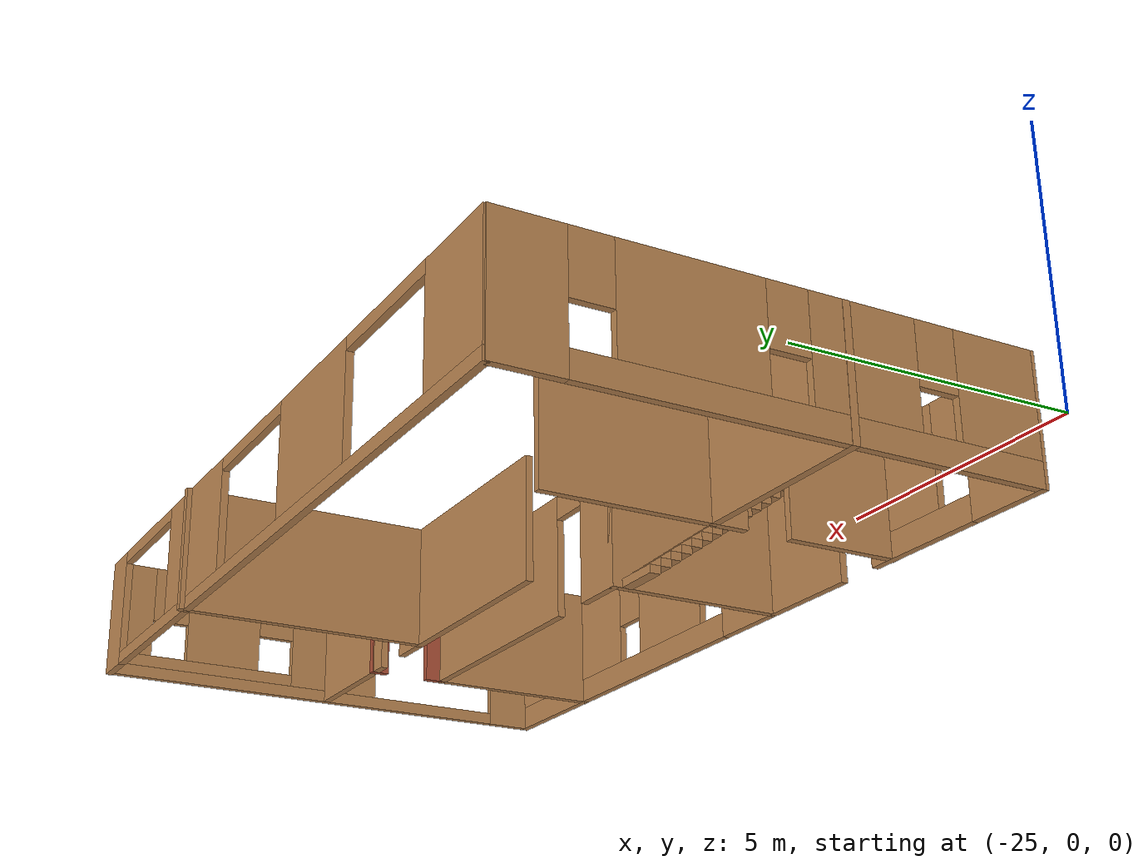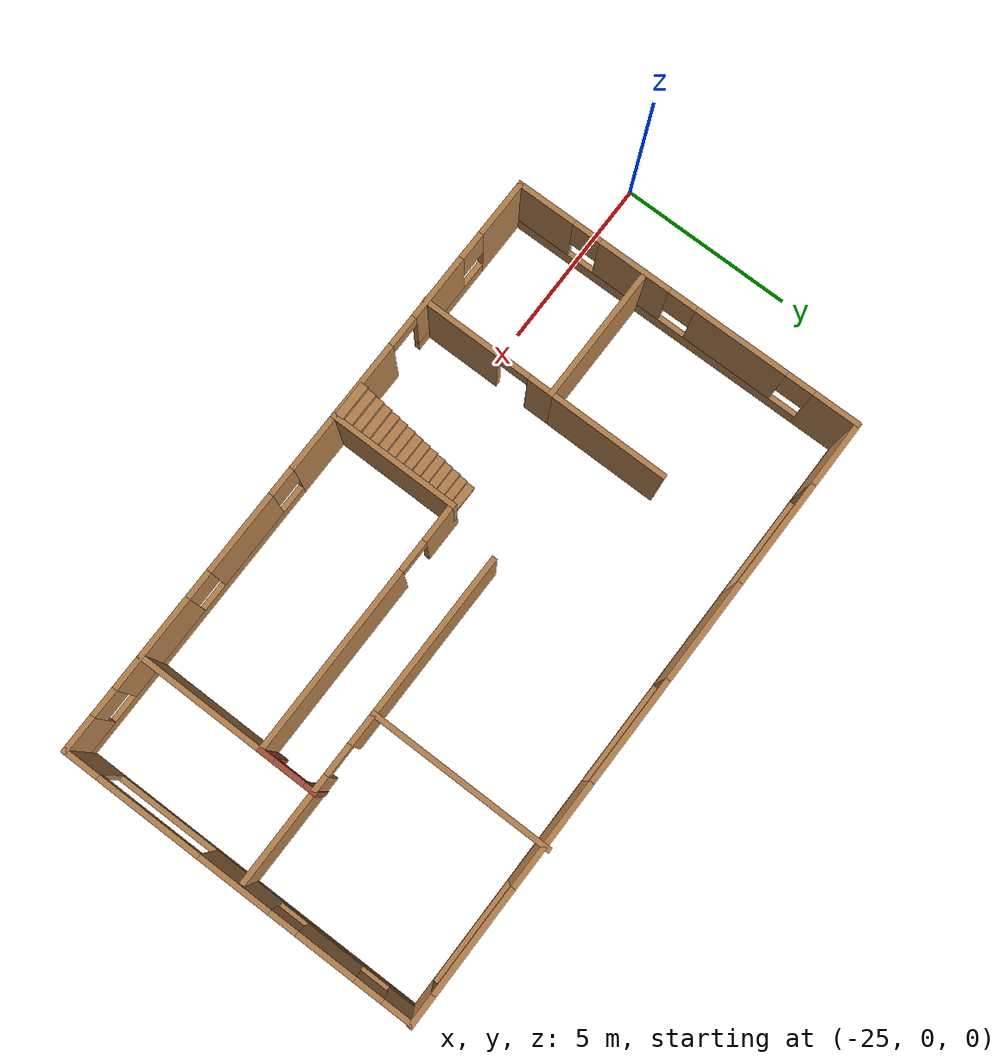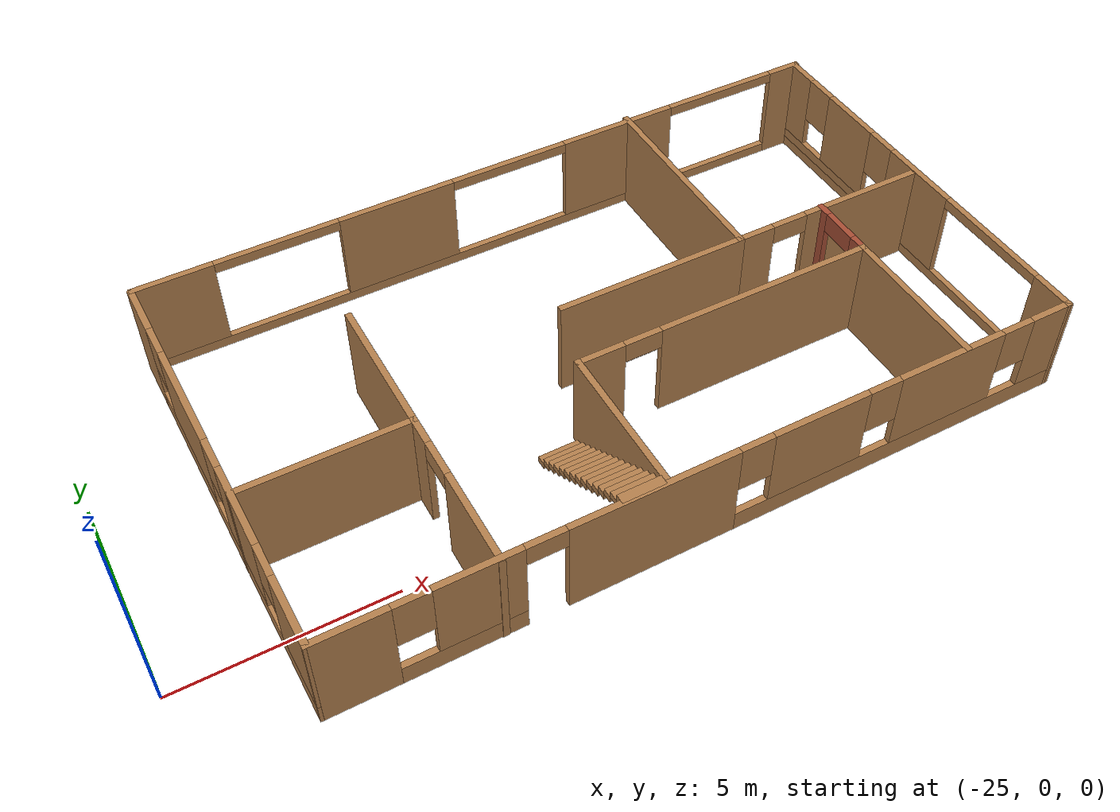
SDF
<?xml version='1.0'?>
<sdf version='1.6'>
  <model name='myhouse'>
    <pose frame=''>-13.7005 3.27894 0 0 -0 0</pose>
    <link name='Stairs_1'>
      <visual name='Stairs_1_Visual_0'>
        <pose frame=''>-1.85273 -1.76804 0.083333 0 -0 0</pose>
        <geometry>
          <box>
            <size>1 0.233333 0.166667</size>
          </box>
        </geometry>
        <material>
          <script>
            <uri>file://media/materials/scripts/gazebo.material</uri>
            <name>Gazebo/Wood</name>
          </script>
          <ambient>1 1 1 1</ambient>
        </material>
        <meta>
          <layer>0</layer>
        </meta>
      </visual>
      <collision name='Stairs_1_Collision_0'>
        <geometry>
          <box>
            <size>1 0.233333 0.166667</size>
          </box>
        </geometry>
        <pose frame=''>-1.85273 -1.76804 0.083333 0 -0 0</pose>
      </collision>
      <visual name='Stairs_1_Visual_1'>
        <pose frame=''>-1.85273 -2.00138 0.25 0 -0 0</pose>
        <geometry>
          <box>
            <size>1 0.233333 0.166667</size>
          </box>
        </geometry>
        <material>
          <script>
            <uri>file://media/materials/scripts/gazebo.material</uri>
            <name>Gazebo/Wood</name>
          </script>
          <ambient>1 1 1 1</ambient>
        </material>
        <meta>
          <layer>0</layer>
        </meta>
      </visual>
      <collision name='Stairs_1_Collision_1'>
        <geometry>
          <box>
            <size>1 0.233333 0.166667</size>
          </box>
        </geometry>
        <pose frame=''>-1.85273 -2.00138 0.25 0 -0 0</pose>
      </collision>
      <visual name='Stairs_1_Visual_2'>
        <pose frame=''>-1.85273 -2.23471 0.416667 0 -0 0</pose>
        <geometry>
          <box>
            <size>1 0.233333 0.166667</size>
          </box>
        </geometry>
        <material>
          <script>
            <uri>file://media/materials/scripts/gazebo.material</uri>
            <name>Gazebo/Wood</name>
          </script>
          <ambient>1 1 1 1</ambient>
        </material>
        <meta>
          <layer>0</layer>
        </meta>
      </visual>
      <collision name='Stairs_1_Collision_2'>
        <geometry>
          <box>
            <size>1 0.233333 0.166667</size>
          </box>
        </geometry>
        <pose frame=''>-1.85273 -2.23471 0.416667 0 -0 0</pose>
      </collision>
      <visual name='Stairs_1_Visual_3'>
        <pose frame=''>-1.85273 -2.46804 0.583333 0 -0 0</pose>
        <geometry>
          <box>
            <size>1 0.233333 0.166667</size>
          </box>
        </geometry>
        <material>
          <script>
            <uri>file://media/materials/scripts/gazebo.material</uri>
            <name>Gazebo/Wood</name>
          </script>
          <ambient>1 1 1 1</ambient>
        </material>
        <meta>
          <layer>0</layer>
        </meta>
      </visual>
      <collision name='Stairs_1_Collision_3'>
        <geometry>
          <box>
            <size>1 0.233333 0.166667</size>
          </box>
        </geometry>
        <pose frame=''>-1.85273 -2.46804 0.583333 0 -0 0</pose>
      </collision>
      <visual name='Stairs_1_Visual_4'>
        <pose frame=''>-1.85273 -2.70138 0.75 0 -0 0</pose>
        <geometry>
          <box>
            <size>1 0.233333 0.166667</size>
          </box>
        </geometry>
        <material>
          <script>
            <uri>file://media/materials/scripts/gazebo.material</uri>
            <name>Gazebo/Wood</name>
          </script>
          <ambient>1 1 1 1</ambient>
        </material>
        <meta>
          <layer>0</layer>
        </meta>
      </visual>
      <collision name='Stairs_1_Collision_4'>
        <geometry>
          <box>
            <size>1 0.233333 0.166667</size>
          </box>
        </geometry>
        <pose frame=''>-1.85273 -2.70138 0.75 0 -0 0</pose>
      </collision>
      <visual name='Stairs_1_Visual_5'>
        <pose frame=''>-1.85273 -2.93471 0.916667 0 -0 0</pose>
        <geometry>
          <box>
            <size>1 0.233333 0.166667</size>
          </box>
        </geometry>
        <material>
          <script>
            <uri>file://media/materials/scripts/gazebo.material</uri>
            <name>Gazebo/Wood</name>
          </script>
          <ambient>1 1 1 1</ambient>
        </material>
        <meta>
          <layer>0</layer>
        </meta>
      </visual>
      <collision name='Stairs_1_Collision_5'>
        <geometry>
          <box>
            <size>1 0.233333 0.166667</size>
          </box>
        </geometry>
        <pose frame=''>-1.85273 -2.93471 0.916667 0 -0 0</pose>
      </collision>
      <visual name='Stairs_1_Visual_6'>
        <pose frame=''>-1.85273 -3.16804 1.08333 0 -0 0</pose>
        <geometry>
          <box>
            <size>1 0.233333 0.166667</size>
          </box>
        </geometry>
        <material>
          <script>
            <uri>file://media/materials/scripts/gazebo.material</uri>
            <name>Gazebo/Wood</name>
          </script>
          <ambient>1 1 1 1</ambient>
        </material>
        <meta>
          <layer>0</layer>
        </meta>
      </visual>
      <collision name='Stairs_1_Collision_6'>
        <geometry>
          <box>
            <size>1 0.233333 0.166667</size>
          </box>
        </geometry>
        <pose frame=''>-1.85273 -3.16804 1.08333 0 -0 0</pose>
      </collision>
      <visual name='Stairs_1_Visual_7'>
        <pose frame=''>-1.85273 -3.40138 1.25 0 -0 0</pose>
        <geometry>
          <box>
            <size>1 0.233333 0.166667</size>
          </box>
        </geometry>
        <material>
          <script>
            <uri>file://media/materials/scripts/gazebo.material</uri>
            <name>Gazebo/Wood</name>
          </script>
          <ambient>1 1 1 1</ambient>
        </material>
        <meta>
          <layer>0</layer>
        </meta>
      </visual>
      <collision name='Stairs_1_Collision_7'>
        <geometry>
          <box>
            <size>1 0.233333 0.166667</size>
          </box>
        </geometry>
        <pose frame=''>-1.85273 -3.40138 1.25 0 -0 0</pose>
      </collision>
      <visual name='Stairs_1_Visual_8'>
        <pose frame=''>-1.85273 -3.63471 1.41667 0 -0 0</pose>
        <geometry>
          <box>
            <size>1 0.233333 0.166667</size>
          </box>
        </geometry>
        <material>
          <script>
            <uri>file://media/materials/scripts/gazebo.material</uri>
            <name>Gazebo/Wood</name>
          </script>
          <ambient>1 1 1 1</ambient>
        </material>
        <meta>
          <layer>0</layer>
        </meta>
      </visual>
      <collision name='Stairs_1_Collision_8'>
        <geometry>
          <box>
            <size>1 0.233333 0.166667</size>
          </box>
        </geometry>
        <pose frame=''>-1.85273 -3.63471 1.41667 0 -0 0</pose>
      </collision>
      <visual name='Stairs_1_Visual_9'>
        <pose frame=''>-1.85273 -3.86804 1.58333 0 -0 0</pose>
        <geometry>
          <box>
            <size>1 0.233333 0.166667</size>
          </box>
        </geometry>
        <material>
          <script>
            <uri>file://media/materials/scripts/gazebo.material</uri>
            <name>Gazebo/Wood</name>
          </script>
          <ambient>1 1 1 1</ambient>
        </material>
        <meta>
          <layer>0</layer>
        </meta>
      </visual>
      <collision name='Stairs_1_Collision_9'>
        <geometry>
          <box>
            <size>1 0.233333 0.166667</size>
          </box>
        </geometry>
        <pose frame=''>-1.85273 -3.86804 1.58333 0 -0 0</pose>
      </collision>
      <visual name='Stairs_1_Visual_10'>
        <pose frame=''>-1.85273 -4.10138 1.75 0 -0 0</pose>
        <geometry>
          <box>
            <size>1 0.233333 0.166667</size>
          </box>
        </geometry>
        <material>
          <script>
            <uri>file://media/materials/scripts/gazebo.material</uri>
            <name>Gazebo/Wood</name>
          </script>
          <ambient>1 1 1 1</ambient>
        </material>
        <meta>
          <layer>0</layer>
        </meta>
      </visual>
      <collision name='Stairs_1_Collision_10'>
        <geometry>
          <box>
            <size>1 0.233333 0.166667</size>
          </box>
        </geometry>
        <pose frame=''>-1.85273 -4.10138 1.75 0 -0 0</pose>
      </collision>
      <visual name='Stairs_1_Visual_11'>
        <pose frame=''>-1.85273 -4.33471 1.91667 0 -0 0</pose>
        <geometry>
          <box>
            <size>1 0.233333 0.166667</size>
          </box>
        </geometry>
        <material>
          <script>
            <uri>file://media/materials/scripts/gazebo.material</uri>
            <name>Gazebo/Wood</name>
          </script>
          <ambient>1 1 1 1</ambient>
        </material>
        <meta>
          <layer>0</layer>
        </meta>
      </visual>
      <collision name='Stairs_1_Collision_11'>
        <geometry>
          <box>
            <size>1 0.233333 0.166667</size>
          </box>
        </geometry>
        <pose frame=''>-1.85273 -4.33471 1.91667 0 -0 0</pose>
      </collision>
      <visual name='Stairs_1_Visual_12'>
        <pose frame=''>-1.85273 -4.56804 2.08333 0 -0 0</pose>
        <geometry>
          <box>
            <size>1 0.233333 0.166667</size>
          </box>
        </geometry>
        <material>
          <script>
            <uri>file://media/materials/scripts/gazebo.material</uri>
            <name>Gazebo/Wood</name>
          </script>
          <ambient>1 1 1 1</ambient>
        </material>
        <meta>
          <layer>0</layer>
        </meta>
      </visual>
      <collision name='Stairs_1_Collision_12'>
        <geometry>
          <box>
            <size>1 0.233333 0.166667</size>
          </box>
        </geometry>
        <pose frame=''>-1.85273 -4.56804 2.08333 0 -0 0</pose>
      </collision>
      <visual name='Stairs_1_Visual_13'>
        <pose frame=''>-1.85273 -4.80138 2.25 0 -0 0</pose>
        <geometry>
          <box>
            <size>1 0.233333 0.166667</size>
          </box>
        </geometry>
        <material>
          <script>
            <uri>file://media/materials/scripts/gazebo.material</uri>
            <name>Gazebo/Wood</name>
          </script>
          <ambient>1 1 1 1</ambient>
        </material>
        <meta>
          <layer>0</layer>
        </meta>
      </visual>
      <collision name='Stairs_1_Collision_13'>
        <geometry>
          <box>
            <size>1 0.233333 0.166667</size>
          </box>
        </geometry>
        <pose frame=''>-1.85273 -4.80138 2.25 0 -0 0</pose>
      </collision>
      <visual name='Stairs_1_Visual_14'>
        <pose frame=''>-1.85273 -5.03471 2.41667 0 -0 0</pose>
        <geometry>
          <box>
            <size>1 0.233333 0.166667</size>
          </box>
        </geometry>
        <material>
          <script>
            <uri>file://media/materials/scripts/gazebo.material</uri>
            <name>Gazebo/Wood</name>
          </script>
          <ambient>1 1 1 1</ambient>
        </material>
        <meta>
          <layer>0</layer>
        </meta>
      </visual>
      <collision name='Stairs_1_Collision_14'>
        <geometry>
          <box>
            <size>1 0.233333 0.166667</size>
          </box>
        </geometry>
        <pose frame=''>-1.85273 -5.03471 2.41667 0 -0 0</pose>
      </collision>
    </link>
    <link name='Wall_1'>
      <pose frame=''>-8.8 -0.057051 0 0 0 -1.56387</pose>
      <visual name='Wall_1_Visual_0'>
        <pose frame=''>-4.485 0 1.25 0 -0 0</pose>
        <geometry>
          <box>
            <size>1.33925 0.15 2.5</size>
          </box>
        </geometry>
        <material>
          <script>
            <uri>file://media/materials/scripts/gazebo.material</uri>
            <name>Gazebo/Wood</name>
          </script>
          <ambient>1 1 1 1</ambient>
        </material>
        <meta>
          <layer>0</layer>
        </meta>
      </visual>
      <collision name='Wall_1_Collision_0'>
        <geometry>
          <box>
            <size>1.33925 0.15 2.5</size>
          </box>
        </geometry>
        <pose frame=''>-4.485 0 1.25 0 -0 0</pose>
      </collision>
      <visual name='Wall_1_Visual_1'>
        <pose frame=''>0.669623 0 0.25 0 -0 0</pose>
        <geometry>
          <box>
            <size>8.97 0.15 0.5</size>
          </box>
        </geometry>
        <material>
          <script>
            <uri>file://media/materials/scripts/gazebo.material</uri>
            <name>Gazebo/Wood</name>
          </script>
          <ambient>1 1 1 1</ambient>
        </material>
        <meta>
          <layer>0</layer>
        </meta>
      </visual>
      <collision name='Wall_1_Collision_1'>
        <geometry>
          <box>
            <size>8.97 0.15 0.5</size>
          </box>
        </geometry>
        <pose frame=''>0.669623 0 0.25 0 -0 0</pose>
      </collision>
      <visual name='Wall_1_Visual_2'>
        <pose frame=''>-1.6569 0 1.5 0 -0 0</pose>
        <geometry>
          <box>
            <size>2.71694 0.15 2</size>
          </box>
        </geometry>
        <material>
          <script>
            <uri>file://media/materials/scripts/gazebo.material</uri>
            <name>Gazebo/Wood</name>
          </script>
          <ambient>1 1 1 1</ambient>
        </material>
        <meta>
          <layer>0</layer>
        </meta>
      </visual>
      <collision name='Wall_1_Collision_2'>
        <geometry>
          <box>
            <size>2.71694 0.15 2</size>
          </box>
        </geometry>
        <pose frame=''>-1.6569 0 1.5 0 -0 0</pose>
      </collision>
      <visual name='Wall_1_Visual_3'>
        <pose frame=''>1.55542 0 1.5 0 -0 0</pose>
        <geometry>
          <box>
            <size>2.1077 0.15 2</size>
          </box>
        </geometry>
        <material>
          <script>
            <uri>file://media/materials/scripts/gazebo.material</uri>
            <name>Gazebo/Wood</name>
          </script>
          <ambient>1 1 1 1</ambient>
        </material>
        <meta>
          <layer>0</layer>
        </meta>
      </visual>
      <collision name='Wall_1_Collision_3'>
        <geometry>
          <box>
            <size>2.1077 0.15 2</size>
          </box>
        </geometry>
        <pose frame=''>1.55542 0 1.5 0 -0 0</pose>
      </collision>
      <visual name='Wall_1_Visual_4'>
        <pose frame=''>4.28194 0 1.5 0 -0 0</pose>
        <geometry>
          <box>
            <size>1.74535 0.15 2</size>
          </box>
        </geometry>
        <material>
          <script>
            <uri>file://media/materials/scripts/gazebo.material</uri>
            <name>Gazebo/Wood</name>
          </script>
          <ambient>1 1 1 1</ambient>
        </material>
        <meta>
          <layer>0</layer>
        </meta>
      </visual>
      <collision name='Wall_1_Collision_4'>
        <geometry>
          <box>
            <size>1.74535 0.15 2</size>
          </box>
        </geometry>
        <pose frame=''>4.28194 0 1.5 0 -0 0</pose>
      </collision>
      <visual name='Wall_1_Visual_5'>
        <pose frame=''>-3.41537 0 1.9 0 -0 0</pose>
        <geometry>
          <box>
            <size>0.8 0.15 1.2</size>
          </box>
        </geometry>
        <material>
          <script>
            <uri>file://media/materials/scripts/gazebo.material</uri>
            <name>Gazebo/Wood</name>
          </script>
          <ambient>1 1 1 1</ambient>
        </material>
        <meta>
          <layer>0</layer>
        </meta>
      </visual>
      <collision name='Wall_1_Collision_5'>
        <geometry>
          <box>
            <size>0.8 0.15 1.2</size>
          </box>
        </geometry>
        <pose frame=''>-3.41537 0 1.9 0 -0 0</pose>
      </collision>
      <visual name='Wall_1_Visual_6'>
        <pose frame=''>0.10157 0 1.9 0 -0 0</pose>
        <geometry>
          <box>
            <size>0.8 0.15 1.2</size>
          </box>
        </geometry>
        <material>
          <script>
            <uri>file://media/materials/scripts/gazebo.material</uri>
            <name>Gazebo/Wood</name>
          </script>
          <ambient>1 1 1 1</ambient>
        </material>
        <meta>
          <layer>0</layer>
        </meta>
      </visual>
      <collision name='Wall_1_Collision_6'>
        <geometry>
          <box>
            <size>0.8 0.15 1.2</size>
          </box>
        </geometry>
        <pose frame=''>0.10157 0 1.9 0 -0 0</pose>
      </collision>
      <visual name='Wall_1_Visual_7'>
        <pose frame=''>3.00927 0 1.9 0 -0 0</pose>
        <geometry>
          <box>
            <size>0.8 0.15 1.2</size>
          </box>
        </geometry>
        <material>
          <script>
            <uri>file://media/materials/scripts/gazebo.material</uri>
            <name>Gazebo/Wood</name>
          </script>
          <ambient>1 1 1 1</ambient>
        </material>
        <meta>
          <layer>0</layer>
        </meta>
      </visual>
      <collision name='Wall_1_Collision_7'>
        <geometry>
          <box>
            <size>0.8 0.15 1.2</size>
          </box>
        </geometry>
        <pose frame=''>3.00927 0 1.9 0 -0 0</pose>
      </collision>
    </link>
    <link name='Wall_10'>
      <collision name='Wall_10_Collision'>
        <geometry>
          <box>
            <size>4.75 0.15 2.5</size>
          </box>
        </geometry>
        <pose frame=''>0 0 1.25 0 -0 0</pose>
      </collision>
      <visual name='Wall_10_Visual'>
        <pose frame=''>0 0 1.25 0 -0 0</pose>
        <geometry>
          <box>
            <size>4.75 0.15 2.5</size>
          </box>
        </geometry>
        <material>
          <script>
            <uri>file://media/materials/scripts/gazebo.material</uri>
            <name>Gazebo/Wood</name>
          </script>
          <ambient>1 1 1 1</ambient>
        </material>
        <meta>
          <layer>0</layer>
        </meta>
      </visual>
      <pose frame=''>1.47718 0.052269 0 0 -0 3.14159</pose>
    </link>
    <link name='Wall_12'>
      <pose frame=''>6.20218 0.052269 0 0 -0 0</pose>
      <visual name='Wall_12_Visual_0'>
        <pose frame=''>-2.01517 0 1.25 0 -0 0</pose>
        <geometry>
          <box>
            <size>0.969666 0.15 2.5</size>
          </box>
        </geometry>
        <material>
          <script>
            <uri>file://media/materials/scripts/gazebo.material</uri>
            <name>Gazebo/Wood</name>
          </script>
          <ambient>1 1 1 1</ambient>
        </material>
        <meta>
          <layer>0</layer>
        </meta>
      </visual>
      <collision name='Wall_12_Collision_0'>
        <geometry>
          <box>
            <size>0.969666 0.15 2.5</size>
          </box>
        </geometry>
        <pose frame=''>-2.01517 0 1.25 0 -0 0</pose>
      </collision>
      <visual name='Wall_12_Visual_1'>
        <pose frame=''>0.934833 0 1.25 0 -0 0</pose>
        <geometry>
          <box>
            <size>3.13033 0.15 2.5</size>
          </box>
        </geometry>
        <material>
          <script>
            <uri>file://media/materials/scripts/gazebo.material</uri>
            <name>Gazebo/Wood</name>
          </script>
          <ambient>1 1 1 1</ambient>
        </material>
        <meta>
          <layer>0</layer>
        </meta>
      </visual>
      <collision name='Wall_12_Collision_1'>
        <geometry>
          <box>
            <size>3.13033 0.15 2.5</size>
          </box>
        </geometry>
        <pose frame=''>0.934833 0 1.25 0 -0 0</pose>
      </collision>
      <visual name='Wall_12_Visual_2'>
        <pose frame=''>-1.08033 0 2.25 0 -0 0</pose>
        <geometry>
          <box>
            <size>0.9 0.15 0.5</size>
          </box>
        </geometry>
        <material>
          <script>
            <uri>file://media/materials/scripts/gazebo.material</uri>
            <name>Gazebo/Wood</name>
          </script>
          <ambient>1 1 1 1</ambient>
        </material>
        <meta>
          <layer>0</layer>
        </meta>
      </visual>
      <collision name='Wall_12_Collision_2'>
        <geometry>
          <box>
            <size>0.9 0.15 0.5</size>
          </box>
        </geometry>
        <pose frame=''>-1.08033 0 2.25 0 -0 0</pose>
      </collision>
    </link>
    <link name='Wall_14'>
      <pose frame=''>-4.9454 -3.22727 0 0 0 -1.5708</pose>
      <visual name='Wall_14_Visual_0'>
        <pose frame=''>-1.62739 0 1.25 0 -0 0</pose>
        <geometry>
          <box>
            <size>0.74522 0.15 2.5</size>
          </box>
        </geometry>
        <material>
          <script>
            <uri>file://media/materials/scripts/gazebo.material</uri>
            <name>Gazebo/Wood</name>
          </script>
          <ambient>1 1 1 1</ambient>
        </material>
        <meta>
          <layer>0</layer>
        </meta>
      </visual>
      <collision name='Wall_14_Collision_0'>
        <geometry>
          <box>
            <size>0.74522 0.15 2.5</size>
          </box>
        </geometry>
        <pose frame=''>-1.62739 0 1.25 0 -0 0</pose>
      </collision>
      <visual name='Wall_14_Visual_1'>
        <pose frame=''>0.82261 0 1.25 0 -0 0</pose>
        <geometry>
          <box>
            <size>2.35478 0.15 2.5</size>
          </box>
        </geometry>
        <material>
          <script>
            <uri>file://media/materials/scripts/gazebo.material</uri>
            <name>Gazebo/Wood</name>
          </script>
          <ambient>1 1 1 1</ambient>
        </material>
        <meta>
          <layer>0</layer>
        </meta>
      </visual>
      <collision name='Wall_14_Collision_1'>
        <geometry>
          <box>
            <size>2.35478 0.15 2.5</size>
          </box>
        </geometry>
        <pose frame=''>0.82261 0 1.25 0 -0 0</pose>
      </collision>
      <visual name='Wall_14_Visual_2'>
        <pose frame=''>-0.80478 0 2.25 0 -0 0</pose>
        <geometry>
          <box>
            <size>0.9 0.15 0.5</size>
          </box>
        </geometry>
        <material>
          <script>
            <uri>file://media/materials/scripts/gazebo.material</uri>
            <name>Gazebo/Wood</name>
          </script>
          <ambient>1 1 1 1</ambient>
        </material>
        <meta>
          <layer>0</layer>
        </meta>
      </visual>
      <collision name='Wall_14_Collision_2'>
        <geometry>
          <box>
            <size>0.9 0.15 0.5</size>
          </box>
        </geometry>
        <pose frame=''>-0.80478 0 2.25 0 -0 0</pose>
      </collision>
    </link>
    <link name='Wall_16'>
      <collision name='Wall_16_Collision'>
        <geometry>
          <box>
            <size>3.75 0.15 2.5</size>
          </box>
        </geometry>
        <pose frame=''>0 0 1.25 0 -0 0</pose>
      </collision>
      <visual name='Wall_16_Visual'>
        <pose frame=''>0 0 1.25 0 -0 0</pose>
        <geometry>
          <box>
            <size>3.75 0.15 2.5</size>
          </box>
        </geometry>
        <material>
          <script>
            <uri>file://media/materials/scripts/gazebo.material</uri>
            <name>Gazebo/Wood</name>
          </script>
          <ambient>1 1 1 1</ambient>
        </material>
        <meta>
          <layer>0</layer>
        </meta>
      </visual>
      <pose frame=''>-1.3008 -3.32605 0 0 -0 1.5708</pose>
    </link>
    <link name='Wall_17'>
      <pose frame=''>2.3742 -1.52605 0 0 -0 0</pose>
      <visual name='Wall_17_Visual_0'>
        <pose frame=''>-3.1581 0 1.25 0 -0 0</pose>
        <geometry>
          <box>
            <size>1.1838 0.15 2.5</size>
          </box>
        </geometry>
        <material>
          <script>
            <uri>file://media/materials/scripts/gazebo.material</uri>
            <name>Gazebo/Wood</name>
          </script>
          <ambient>1 1 1 1</ambient>
        </material>
        <meta>
          <layer>0</layer>
        </meta>
      </visual>
      <collision name='Wall_17_Collision_0'>
        <geometry>
          <box>
            <size>1.1838 0.15 2.5</size>
          </box>
        </geometry>
        <pose frame=''>-3.1581 0 1.25 0 -0 0</pose>
      </collision>
      <visual name='Wall_17_Visual_1'>
        <pose frame=''>1.0419 0 1.25 0 -0 0</pose>
        <geometry>
          <box>
            <size>5.4162 0.15 2.5</size>
          </box>
        </geometry>
        <material>
          <script>
            <uri>file://media/materials/scripts/gazebo.material</uri>
            <name>Gazebo/Wood</name>
          </script>
          <ambient>1 1 1 1</ambient>
        </material>
        <meta>
          <layer>0</layer>
        </meta>
      </visual>
      <collision name='Wall_17_Collision_1'>
        <geometry>
          <box>
            <size>5.4162 0.15 2.5</size>
          </box>
        </geometry>
        <pose frame=''>1.0419 0 1.25 0 -0 0</pose>
      </collision>
      <visual name='Wall_17_Visual_2'>
        <pose frame=''>-2.1162 0 2.25 0 -0 0</pose>
        <geometry>
          <box>
            <size>0.9 0.15 0.5</size>
          </box>
        </geometry>
        <material>
          <script>
            <uri>file://media/materials/scripts/gazebo.material</uri>
            <name>Gazebo/Wood</name>
          </script>
          <ambient>1 1 1 1</ambient>
        </material>
        <meta>
          <layer>0</layer>
        </meta>
      </visual>
      <collision name='Wall_17_Collision_2'>
        <geometry>
          <box>
            <size>0.9 0.15 0.5</size>
          </box>
        </geometry>
        <pose frame=''>-2.1162 0 2.25 0 -0 0</pose>
      </collision>
    </link>
    <link name='Wall_18'>
      <collision name='Wall_18_Collision'>
        <geometry>
          <box>
            <size>3.75 0.15 2.5</size>
          </box>
        </geometry>
        <pose frame=''>0 0 1.25 0 -0 0</pose>
      </collision>
      <visual name='Wall_18_Visual'>
        <pose frame=''>0 0 1.25 0 -0 0</pose>
        <geometry>
          <box>
            <size>3.75 0.15 2.5</size>
          </box>
        </geometry>
        <material>
          <script>
            <uri>file://media/materials/scripts/gazebo.material</uri>
            <name>Gazebo/Wood</name>
          </script>
          <ambient>1 1 1 1</ambient>
        </material>
        <meta>
          <layer>0</layer>
        </meta>
      </visual>
      <pose frame=''>6.0492 -3.32605 0 0 0 -1.5708</pose>
    </link>
    <link name='Wall_2'>
      <pose frame=''>0.035187 -5.13655 0 0 -0 0</pose>
      <visual name='Wall_2_Visual_0'>
        <pose frame=''>-8.02867 0 1.25 0 -0 0</pose>
        <geometry>
          <box>
            <size>1.69265 0.15 2.5</size>
          </box>
        </geometry>
        <material>
          <script>
            <uri>file://media/materials/scripts/gazebo.material</uri>
            <name>Gazebo/Wood</name>
          </script>
          <ambient>1 1 1 1</ambient>
        </material>
        <meta>
          <layer>0</layer>
        </meta>
      </visual>
      <collision name='Wall_2_Collision_0'>
        <geometry>
          <box>
            <size>1.69265 0.15 2.5</size>
          </box>
        </geometry>
        <pose frame=''>-8.02867 0 1.25 0 -0 0</pose>
      </collision>
      <visual name='Wall_2_Visual_1'>
        <pose frame=''>-1.63349 0 1.25 0 -0 0</pose>
        <geometry>
          <box>
            <size>3.89148 0.15 2.5</size>
          </box>
        </geometry>
        <material>
          <script>
            <uri>file://media/materials/scripts/gazebo.material</uri>
            <name>Gazebo/Wood</name>
          </script>
          <ambient>1 1 1 1</ambient>
        </material>
        <meta>
          <layer>0</layer>
        </meta>
      </visual>
      <collision name='Wall_2_Collision_1'>
        <geometry>
          <box>
            <size>3.89148 0.15 2.5</size>
          </box>
        </geometry>
        <pose frame=''>-1.63349 0 1.25 0 -0 0</pose>
      </collision>
      <visual name='Wall_2_Visual_2'>
        <pose frame=''>-5.83079 0 0.25 0 -0 0</pose>
        <geometry>
          <box>
            <size>2.70312 0.15 0.5</size>
          </box>
        </geometry>
        <material>
          <script>
            <uri>file://media/materials/scripts/gazebo.material</uri>
            <name>Gazebo/Wood</name>
          </script>
          <ambient>1 1 1 1</ambient>
        </material>
        <meta>
          <layer>0</layer>
        </meta>
      </visual>
      <collision name='Wall_2_Collision_2'>
        <geometry>
          <box>
            <size>2.70312 0.15 0.5</size>
          </box>
        </geometry>
        <pose frame=''>-5.83079 0 0.25 0 -0 0</pose>
      </collision>
      <visual name='Wall_2_Visual_3'>
        <pose frame=''>4.59363 0 0.25 0 -0 0</pose>
        <geometry>
          <box>
            <size>8.56274 0.15 0.5</size>
          </box>
        </geometry>
        <material>
          <script>
            <uri>file://media/materials/scripts/gazebo.material</uri>
            <name>Gazebo/Wood</name>
          </script>
          <ambient>1 1 1 1</ambient>
        </material>
        <meta>
          <layer>0</layer>
        </meta>
      </visual>
      <collision name='Wall_2_Collision_3'>
        <geometry>
          <box>
            <size>8.56274 0.15 0.5</size>
          </box>
        </geometry>
        <pose frame=''>4.59363 0 0.25 0 -0 0</pose>
      </collision>
      <visual name='Wall_2_Visual_4'>
        <pose frame=''>-5.43079 0 1.5 0 -0 0</pose>
        <geometry>
          <box>
            <size>1.90312 0.15 2</size>
          </box>
        </geometry>
        <material>
          <script>
            <uri>file://media/materials/scripts/gazebo.material</uri>
            <name>Gazebo/Wood</name>
          </script>
          <ambient>1 1 1 1</ambient>
        </material>
        <meta>
          <layer>0</layer>
        </meta>
      </visual>
      <collision name='Wall_2_Collision_4'>
        <geometry>
          <box>
            <size>1.90312 0.15 2</size>
          </box>
        </geometry>
        <pose frame=''>-5.43079 0 1.5 0 -0 0</pose>
      </collision>
      <visual name='Wall_2_Visual_5'>
        <pose frame=''>-5.43079 0 1.5 0 -0 0</pose>
        <geometry>
          <box>
            <size>1.90312 0.15 2</size>
          </box>
        </geometry>
        <material>
          <script>
            <uri>file://media/materials/scripts/gazebo.material</uri>
            <name>Gazebo/Wood</name>
          </script>
          <ambient>1 1 1 1</ambient>
        </material>
        <meta>
          <layer>0</layer>
        </meta>
      </visual>
      <collision name='Wall_2_Collision_5'>
        <geometry>
          <box>
            <size>1.90312 0.15 2</size>
          </box>
        </geometry>
        <pose frame=''>-5.43079 0 1.5 0 -0 0</pose>
      </collision>
      <visual name='Wall_2_Visual_6'>
        <pose frame=''>2.28765 0 1.5 0 -0 0</pose>
        <geometry>
          <box>
            <size>2.35079 0.15 2</size>
          </box>
        </geometry>
        <material>
          <script>
            <uri>file://media/materials/scripts/gazebo.material</uri>
            <name>Gazebo/Wood</name>
          </script>
          <ambient>1 1 1 1</ambient>
        </material>
        <meta>
          <layer>0</layer>
        </meta>
      </visual>
      <collision name='Wall_2_Collision_6'>
        <geometry>
          <box>
            <size>2.35079 0.15 2</size>
          </box>
        </geometry>
        <pose frame=''>2.28765 0 1.5 0 -0 0</pose>
      </collision>
      <visual name='Wall_2_Visual_7'>
        <pose frame=''>5.62199 0 1.5 0 -0 0</pose>
        <geometry>
          <box>
            <size>2.71788 0.15 2</size>
          </box>
        </geometry>
        <material>
          <script>
            <uri>file://media/materials/scripts/gazebo.material</uri>
            <name>Gazebo/Wood</name>
          </script>
          <ambient>1 1 1 1</ambient>
        </material>
        <meta>
          <layer>0</layer>
        </meta>
      </visual>
      <collision name='Wall_2_Collision_7'>
        <geometry>
          <box>
            <size>2.71788 0.15 2</size>
          </box>
        </geometry>
        <pose frame=''>5.62199 0 1.5 0 -0 0</pose>
      </collision>
      <visual name='Wall_2_Visual_8'>
        <pose frame=''>8.32796 0 1.5 0 -0 0</pose>
        <geometry>
          <box>
            <size>1.09407 0.15 2</size>
          </box>
        </geometry>
        <material>
          <script>
            <uri>file://media/materials/scripts/gazebo.material</uri>
            <name>Gazebo/Wood</name>
          </script>
          <ambient>1 1 1 1</ambient>
        </material>
        <meta>
          <layer>0</layer>
        </meta>
      </visual>
      <collision name='Wall_2_Collision_8'>
        <geometry>
          <box>
            <size>1.09407 0.15 2</size>
          </box>
        </geometry>
        <pose frame=''>8.32796 0 1.5 0 -0 0</pose>
      </collision>
      <visual name='Wall_2_Visual_9'>
        <pose frame=''>-6.78235 0 1.9 0 -0 0</pose>
        <geometry>
          <box>
            <size>0.8 0.15 1.2</size>
          </box>
        </geometry>
        <material>
          <script>
            <uri>file://media/materials/scripts/gazebo.material</uri>
            <name>Gazebo/Wood</name>
          </script>
          <ambient>1 1 1 1</ambient>
        </material>
        <meta>
          <layer>0</layer>
        </meta>
      </visual>
      <collision name='Wall_2_Collision_9'>
        <geometry>
          <box>
            <size>0.8 0.15 1.2</size>
          </box>
        </geometry>
        <pose frame=''>-6.78235 0 1.9 0 -0 0</pose>
      </collision>
      <visual name='Wall_2_Visual_10'>
        <pose frame=''>0.712256 0 1.9 0 -0 0</pose>
        <geometry>
          <box>
            <size>0.8 0.15 1.2</size>
          </box>
        </geometry>
        <material>
          <script>
            <uri>file://media/materials/scripts/gazebo.material</uri>
            <name>Gazebo/Wood</name>
          </script>
          <ambient>1 1 1 1</ambient>
        </material>
        <meta>
          <layer>0</layer>
        </meta>
      </visual>
      <collision name='Wall_2_Collision_10'>
        <geometry>
          <box>
            <size>0.8 0.15 1.2</size>
          </box>
        </geometry>
        <pose frame=''>0.712256 0 1.9 0 -0 0</pose>
      </collision>
      <visual name='Wall_2_Visual_11'>
        <pose frame=''>3.86305 0 1.9 0 -0 0</pose>
        <geometry>
          <box>
            <size>0.8 0.15 1.2</size>
          </box>
        </geometry>
        <material>
          <script>
            <uri>file://media/materials/scripts/gazebo.material</uri>
            <name>Gazebo/Wood</name>
          </script>
          <ambient>1 1 1 1</ambient>
        </material>
        <meta>
          <layer>0</layer>
        </meta>
      </visual>
      <collision name='Wall_2_Collision_11'>
        <geometry>
          <box>
            <size>0.8 0.15 1.2</size>
          </box>
        </geometry>
        <pose frame=''>3.86305 0 1.9 0 -0 0</pose>
      </collision>
      <visual name='Wall_2_Visual_12'>
        <pose frame=''>7.38093 0 1.9 0 -0 0</pose>
        <geometry>
          <box>
            <size>0.8 0.15 1.2</size>
          </box>
        </geometry>
        <material>
          <script>
            <uri>file://media/materials/scripts/gazebo.material</uri>
            <name>Gazebo/Wood</name>
          </script>
          <ambient>1 1 1 1</ambient>
        </material>
        <meta>
          <layer>0</layer>
        </meta>
      </visual>
      <collision name='Wall_2_Collision_12'>
        <geometry>
          <box>
            <size>0.8 0.15 1.2</size>
          </box>
        </geometry>
        <pose frame=''>7.38093 0 1.9 0 -0 0</pose>
      </collision>
      <visual name='Wall_2_Visual_13'>
        <pose frame=''>-4.02923 0 2.25 0 -0 0</pose>
        <geometry>
          <box>
            <size>0.9 0.15 0.5</size>
          </box>
        </geometry>
        <material>
          <script>
            <uri>file://media/materials/scripts/gazebo.material</uri>
            <name>Gazebo/Wood</name>
          </script>
          <ambient>1 1 1 1</ambient>
        </material>
        <meta>
          <layer>0</layer>
        </meta>
      </visual>
      <collision name='Wall_2_Collision_13'>
        <geometry>
          <box>
            <size>0.9 0.15 0.5</size>
          </box>
        </geometry>
        <pose frame=''>-4.02923 0 2.25 0 -0 0</pose>
      </collision>
      <visual name='Wall_2_Visual_14'>
        <pose frame=''>-4.02923 0 2.25 0 -0 0</pose>
        <geometry>
          <box>
            <size>0.9 0.15 0.5</size>
          </box>
        </geometry>
        <material>
          <script>
            <uri>file://media/materials/scripts/gazebo.material</uri>
            <name>Gazebo/Wood</name>
          </script>
          <ambient>1 1 1 1</ambient>
        </material>
        <meta>
          <layer>0</layer>
        </meta>
      </visual>
      <collision name='Wall_2_Collision_14'>
        <geometry>
          <box>
            <size>0.9 0.15 0.5</size>
          </box>
        </geometry>
        <pose frame=''>-4.02923 0 2.25 0 -0 0</pose>
      </collision>
    </link>
    <link name='Wall_20'>
      <pose frame=''>6.0492 -0.726048 0 0 -0 1.5708</pose>
      <visual name='Wall_20_Visual_0'>
        <pose frame=''>-0.638899 0 1.25 0 -0 0</pose>
        <geometry>
          <box>
            <size>0.472202 0.15 2.5</size>
          </box>
        </geometry>
        <material>
          <script>
            <uri>file://media/materials/scripts/gazebo.material</uri>
            <name>Gazebo/Bricks</name>
          </script>
          <ambient>1 1 1 1</ambient>
        </material>
        <meta>
          <layer>0</layer>
        </meta>
      </visual>
      <collision name='Wall_20_Collision_0'>
        <geometry>
          <box>
            <size>0.472202 0.15 2.5</size>
          </box>
        </geometry>
        <pose frame=''>-0.638899 0 1.25 0 -0 0</pose>
      </collision>
      <visual name='Wall_20_Visual_1'>
        <pose frame=''>0.686101 0 1.25 0 -0 0</pose>
        <geometry>
          <box>
            <size>0.377798 0.15 2.5</size>
          </box>
        </geometry>
        <material>
          <script>
            <uri>file://media/materials/scripts/gazebo.material</uri>
            <name>Gazebo/Bricks</name>
          </script>
          <ambient>1 1 1 1</ambient>
        </material>
        <meta>
          <layer>0</layer>
        </meta>
      </visual>
      <collision name='Wall_20_Collision_1'>
        <geometry>
          <box>
            <size>0.377798 0.15 2.5</size>
          </box>
        </geometry>
        <pose frame=''>0.686101 0 1.25 0 -0 0</pose>
      </collision>
      <visual name='Wall_20_Visual_2'>
        <pose frame=''>0.047202 0 2.25 0 -0 0</pose>
        <geometry>
          <box>
            <size>0.9 0.15 0.5</size>
          </box>
        </geometry>
        <material>
          <script>
            <uri>file://media/materials/scripts/gazebo.material</uri>
            <name>Gazebo/Bricks</name>
          </script>
          <ambient>1 1 1 1</ambient>
        </material>
        <meta>
          <layer>0</layer>
        </meta>
      </visual>
      <collision name='Wall_20_Collision_2'>
        <geometry>
          <box>
            <size>0.9 0.15 0.5</size>
          </box>
        </geometry>
        <pose frame=''>0.047202 0 2.25 0 -0 0</pose>
      </collision>
    </link>
    <link name='Wall_3'>
      <pose frame=''>8.8 -0.057051 0 0 -0 1.57772</pose>
      <visual name='Wall_3_Visual_0'>
        <pose frame=''>-4.61651 0 1.25 0 -0 0</pose>
        <geometry>
          <box>
            <size>1.07622 0.15 2.5</size>
          </box>
        </geometry>
        <material>
          <script>
            <uri>file://media/materials/scripts/gazebo.material</uri>
            <name>Gazebo/Wood</name>
          </script>
          <ambient>1 1 1 1</ambient>
        </material>
        <meta>
          <layer>0</layer>
        </meta>
      </visual>
      <collision name='Wall_3_Collision_0'>
        <geometry>
          <box>
            <size>1.07622 0.15 2.5</size>
          </box>
        </geometry>
        <pose frame=''>-4.61651 0 1.25 0 -0 0</pose>
      </collision>
      <visual name='Wall_3_Visual_1'>
        <pose frame=''>0.538112 0 0.125 0 -0 0</pose>
        <geometry>
          <box>
            <size>9.23302 0.15 0.25</size>
          </box>
        </geometry>
        <material>
          <script>
            <uri>file://media/materials/scripts/gazebo.material</uri>
            <name>Gazebo/Wood</name>
          </script>
          <ambient>1 1 1 1</ambient>
        </material>
        <meta>
          <layer>0</layer>
        </meta>
      </visual>
      <collision name='Wall_3_Collision_1'>
        <geometry>
          <box>
            <size>9.23302 0.15 0.25</size>
          </box>
        </geometry>
        <pose frame=''>0.538112 0 0.125 0 -0 0</pose>
      </collision>
      <visual name='Wall_3_Visual_2'>
        <pose frame=''>-0.041564 0 1.375 0 -0 0</pose>
        <geometry>
          <box>
            <size>2.07367 0.15 2.25</size>
          </box>
        </geometry>
        <material>
          <script>
            <uri>file://media/materials/scripts/gazebo.material</uri>
            <name>Gazebo/Wood</name>
          </script>
          <ambient>1 1 1 1</ambient>
        </material>
        <meta>
          <layer>0</layer>
        </meta>
      </visual>
      <collision name='Wall_3_Collision_2'>
        <geometry>
          <box>
            <size>2.07367 0.15 2.25</size>
          </box>
        </geometry>
        <pose frame=''>-0.041564 0 1.375 0 -0 0</pose>
      </collision>
      <visual name='Wall_3_Visual_3'>
        <pose frame=''>3.07495 0 0.375 0 -0 0</pose>
        <geometry>
          <box>
            <size>4.15935 0.15 0.25</size>
          </box>
        </geometry>
        <material>
          <script>
            <uri>file://media/materials/scripts/gazebo.material</uri>
            <name>Gazebo/Wood</name>
          </script>
          <ambient>1 1 1 1</ambient>
        </material>
        <meta>
          <layer>0</layer>
        </meta>
      </visual>
      <collision name='Wall_3_Collision_3'>
        <geometry>
          <box>
            <size>4.15935 0.15 0.25</size>
          </box>
        </geometry>
        <pose frame=''>3.07495 0 0.375 0 -0 0</pose>
      </collision>
      <visual name='Wall_3_Visual_4'>
        <pose frame=''>2.6351 0 1.5 0 -0 0</pose>
        <geometry>
          <box>
            <size>1.67966 0.15 2</size>
          </box>
        </geometry>
        <material>
          <script>
            <uri>file://media/materials/scripts/gazebo.material</uri>
            <name>Gazebo/Wood</name>
          </script>
          <ambient>1 1 1 1</ambient>
        </material>
        <meta>
          <layer>0</layer>
        </meta>
      </visual>
      <collision name='Wall_3_Collision_4'>
        <geometry>
          <box>
            <size>1.67966 0.15 2</size>
          </box>
        </geometry>
        <pose frame=''>2.6351 0 1.5 0 -0 0</pose>
      </collision>
      <visual name='Wall_3_Visual_5'>
        <pose frame=''>4.71477 0 1.5 0 -0 0</pose>
        <geometry>
          <box>
            <size>0.879695 0.15 2</size>
          </box>
        </geometry>
        <material>
          <script>
            <uri>file://media/materials/scripts/gazebo.material</uri>
            <name>Gazebo/Wood</name>
          </script>
          <ambient>1 1 1 1</ambient>
        </material>
        <meta>
          <layer>0</layer>
        </meta>
      </visual>
      <collision name='Wall_3_Collision_5'>
        <geometry>
          <box>
            <size>0.879695 0.15 2</size>
          </box>
        </geometry>
        <pose frame=''>4.71477 0 1.5 0 -0 0</pose>
      </collision>
      <visual name='Wall_3_Visual_6'>
        <pose frame=''>1.39527 0 1.9 0 -0 0</pose>
        <geometry>
          <box>
            <size>0.8 0.15 1.2</size>
          </box>
        </geometry>
        <material>
          <script>
            <uri>file://media/materials/scripts/gazebo.material</uri>
            <name>Gazebo/Wood</name>
          </script>
          <ambient>1 1 1 1</ambient>
        </material>
        <meta>
          <layer>0</layer>
        </meta>
      </visual>
      <collision name='Wall_3_Collision_6'>
        <geometry>
          <box>
            <size>0.8 0.15 1.2</size>
          </box>
        </geometry>
        <pose frame=''>1.39527 0 1.9 0 -0 0</pose>
      </collision>
      <visual name='Wall_3_Visual_7'>
        <pose frame=''>3.87493 0 1.9 0 -0 0</pose>
        <geometry>
          <box>
            <size>0.8 0.15 1.2</size>
          </box>
        </geometry>
        <material>
          <script>
            <uri>file://media/materials/scripts/gazebo.material</uri>
            <name>Gazebo/Wood</name>
          </script>
          <ambient>1 1 1 1</ambient>
        </material>
        <meta>
          <layer>0</layer>
        </meta>
      </visual>
      <collision name='Wall_3_Collision_7'>
        <geometry>
          <box>
            <size>0.8 0.15 1.2</size>
          </box>
        </geometry>
        <pose frame=''>3.87493 0 1.9 0 -0 0</pose>
      </collision>
      <visual name='Wall_3_Visual_8'>
        <pose frame=''>-2.5784 0 2.375 0 -0 0</pose>
        <geometry>
          <box>
            <size>3 0.15 0.25</size>
          </box>
        </geometry>
        <material>
          <script>
            <uri>file://media/materials/scripts/gazebo.material</uri>
            <name>Gazebo/Wood</name>
          </script>
          <ambient>1 1 1 1</ambient>
        </material>
        <meta>
          <layer>0</layer>
        </meta>
      </visual>
      <collision name='Wall_3_Collision_8'>
        <geometry>
          <box>
            <size>3 0.15 0.25</size>
          </box>
        </geometry>
        <pose frame=''>-2.5784 0 2.375 0 -0 0</pose>
      </collision>
    </link>
    <link name='Wall_4'>
      <pose frame=''>-0.004597 5.05304 0 0 -0 3.14159</pose>
      <visual name='Wall_4_Visual_0'>
        <pose frame=''>-8.42371 0 1.25 0 -0 0</pose>
        <geometry>
          <box>
            <size>0.902586 0.15 2.5</size>
          </box>
        </geometry>
        <material>
          <script>
            <uri>file://media/materials/scripts/gazebo.material</uri>
            <name>Gazebo/Wood</name>
          </script>
          <ambient>1 1 1 1</ambient>
        </material>
        <meta>
          <layer>0</layer>
        </meta>
      </visual>
      <collision name='Wall_4_Collision_0'>
        <geometry>
          <box>
            <size>0.902586 0.15 2.5</size>
          </box>
        </geometry>
        <pose frame=''>-8.42371 0 1.25 0 -0 0</pose>
      </collision>
      <visual name='Wall_4_Visual_1'>
        <pose frame=''>0.451293 0 0.125 0 -0 0</pose>
        <geometry>
          <box>
            <size>16.8474 0.15 0.25</size>
          </box>
        </geometry>
        <material>
          <script>
            <uri>file://media/materials/scripts/gazebo.material</uri>
            <name>Gazebo/Wood</name>
          </script>
          <ambient>1 1 1 1</ambient>
        </material>
        <meta>
          <layer>0</layer>
        </meta>
      </visual>
      <collision name='Wall_4_Collision_1'>
        <geometry>
          <box>
            <size>16.8474 0.15 0.25</size>
          </box>
        </geometry>
        <pose frame=''>0.451293 0 0.125 0 -0 0</pose>
      </collision>
      <visual name='Wall_4_Visual_2'>
        <pose frame=''>-3.45928 0 1.375 0 -0 0</pose>
        <geometry>
          <box>
            <size>3.02628 0.15 2.25</size>
          </box>
        </geometry>
        <material>
          <script>
            <uri>file://media/materials/scripts/gazebo.material</uri>
            <name>Gazebo/Wood</name>
          </script>
          <ambient>1 1 1 1</ambient>
        </material>
        <meta>
          <layer>0</layer>
        </meta>
      </visual>
      <collision name='Wall_4_Collision_2'>
        <geometry>
          <box>
            <size>3.02628 0.15 2.25</size>
          </box>
        </geometry>
        <pose frame=''>-3.45928 0 1.375 0 -0 0</pose>
      </collision>
      <visual name='Wall_4_Visual_3'>
        <pose frame=''>2.50582 0 1.375 0 -0 0</pose>
        <geometry>
          <box>
            <size>2.90391 0.15 2.25</size>
          </box>
        </geometry>
        <material>
          <script>
            <uri>file://media/materials/scripts/gazebo.material</uri>
            <name>Gazebo/Wood</name>
          </script>
          <ambient>1 1 1 1</ambient>
        </material>
        <meta>
          <layer>0</layer>
        </meta>
      </visual>
      <collision name='Wall_4_Collision_3'>
        <geometry>
          <box>
            <size>2.90391 0.15 2.25</size>
          </box>
        </geometry>
        <pose frame=''>2.50582 0 1.375 0 -0 0</pose>
      </collision>
      <visual name='Wall_4_Visual_4'>
        <pose frame=''>7.91639 0 1.375 0 -0 0</pose>
        <geometry>
          <box>
            <size>1.91722 0.15 2.25</size>
          </box>
        </geometry>
        <material>
          <script>
            <uri>file://media/materials/scripts/gazebo.material</uri>
            <name>Gazebo/Wood</name>
          </script>
          <ambient>1 1 1 1</ambient>
        </material>
        <meta>
          <layer>0</layer>
        </meta>
      </visual>
      <collision name='Wall_4_Collision_4'>
        <geometry>
          <box>
            <size>1.91722 0.15 2.25</size>
          </box>
        </geometry>
        <pose frame=''>7.91639 0 1.375 0 -0 0</pose>
      </collision>
      <visual name='Wall_4_Visual_5'>
        <pose frame=''>-6.47241 0 2.375 0 -0 0</pose>
        <geometry>
          <box>
            <size>3 0.15 0.25</size>
          </box>
        </geometry>
        <material>
          <script>
            <uri>file://media/materials/scripts/gazebo.material</uri>
            <name>Gazebo/Wood</name>
          </script>
          <ambient>1 1 1 1</ambient>
        </material>
        <meta>
          <layer>0</layer>
        </meta>
      </visual>
      <collision name='Wall_4_Collision_5'>
        <geometry>
          <box>
            <size>3 0.15 0.25</size>
          </box>
        </geometry>
        <pose frame=''>-6.47241 0 2.375 0 -0 0</pose>
      </collision>
      <visual name='Wall_4_Visual_6'>
        <pose frame=''>-0.446138 0 2.375 0 -0 0</pose>
        <geometry>
          <box>
            <size>3 0.15 0.25</size>
          </box>
        </geometry>
        <material>
          <script>
            <uri>file://media/materials/scripts/gazebo.material</uri>
            <name>Gazebo/Wood</name>
          </script>
          <ambient>1 1 1 1</ambient>
        </material>
        <meta>
          <layer>0</layer>
        </meta>
      </visual>
      <collision name='Wall_4_Collision_6'>
        <geometry>
          <box>
            <size>3 0.15 0.25</size>
          </box>
        </geometry>
        <pose frame=''>-0.446138 0 2.375 0 -0 0</pose>
      </collision>
      <visual name='Wall_4_Visual_7'>
        <pose frame=''>5.45778 0 2.375 0 -0 0</pose>
        <geometry>
          <box>
            <size>3 0.15 0.25</size>
          </box>
        </geometry>
        <material>
          <script>
            <uri>file://media/materials/scripts/gazebo.material</uri>
            <name>Gazebo/Wood</name>
          </script>
          <ambient>1 1 1 1</ambient>
        </material>
        <meta>
          <layer>0</layer>
        </meta>
      </visual>
      <collision name='Wall_4_Collision_7'>
        <geometry>
          <box>
            <size>3 0.15 0.25</size>
          </box>
        </geometry>
        <pose frame=''>5.45778 0 2.375 0 -0 0</pose>
      </collision>
    </link>
    <link name='Wall_6'>
      <collision name='Wall_6_Collision'>
        <geometry>
          <box>
            <size>4 0.15 2.5</size>
          </box>
        </geometry>
        <pose frame=''>0 0 1.25 0 -0 0</pose>
      </collision>
      <visual name='Wall_6_Visual'>
        <pose frame=''>0 0 1.25 0 -0 0</pose>
        <geometry>
          <box>
            <size>4 0.15 2.5</size>
          </box>
        </geometry>
        <material>
          <script>
            <uri>file://media/materials/scripts/gazebo.material</uri>
            <name>Gazebo/Wood</name>
          </script>
          <ambient>1 1 1 1</ambient>
        </material>
        <meta>
          <layer>0</layer>
        </meta>
      </visual>
      <pose frame=''>-6.8704 -1.30227 0 0 -0 0</pose>
    </link>
    <link name='Wall_7'>
      <collision name='Wall_7_Collision'>
        <geometry>
          <box>
            <size>3.5 0.15 2.5</size>
          </box>
        </geometry>
        <pose frame=''>0 0 1.25 0 -0 0</pose>
      </collision>
      <visual name='Wall_7_Visual'>
        <pose frame=''>0 0 1.25 0 -0 0</pose>
        <geometry>
          <box>
            <size>3.5 0.15 2.5</size>
          </box>
        </geometry>
        <material>
          <script>
            <uri>file://media/materials/scripts/gazebo.material</uri>
            <name>Gazebo/Wood</name>
          </script>
          <ambient>1 1 1 1</ambient>
        </material>
        <meta>
          <layer>0</layer>
        </meta>
      </visual>
      <pose frame=''>-4.9454 0.372731 0 0 -0 1.5708</pose>
    </link>
    <link name='Wall_9'>
      <collision name='Wall_9_Collision'>
        <geometry>
          <box>
            <size>5.25 0.15 2.5</size>
          </box>
        </geometry>
        <pose frame=''>0 0 1.25 0 -0 0</pose>
      </collision>
      <visual name='Wall_9_Visual'>
        <pose frame=''>0 0 1.25 0 -0 0</pose>
        <geometry>
          <box>
            <size>5.25 0.15 2.5</size>
          </box>
        </geometry>
        <material>
          <script>
            <uri>file://media/materials/scripts/gazebo.material</uri>
            <name>Gazebo/Wood</name>
          </script>
          <ambient>1 1 1 1</ambient>
        </material>
        <meta>
          <layer>0</layer>
        </meta>
      </visual>
      <pose frame=''>3.77718 2.60227 0 0 0 -1.5708</pose>
    </link>
    <static>1</static>
  </model>
</sdf>
